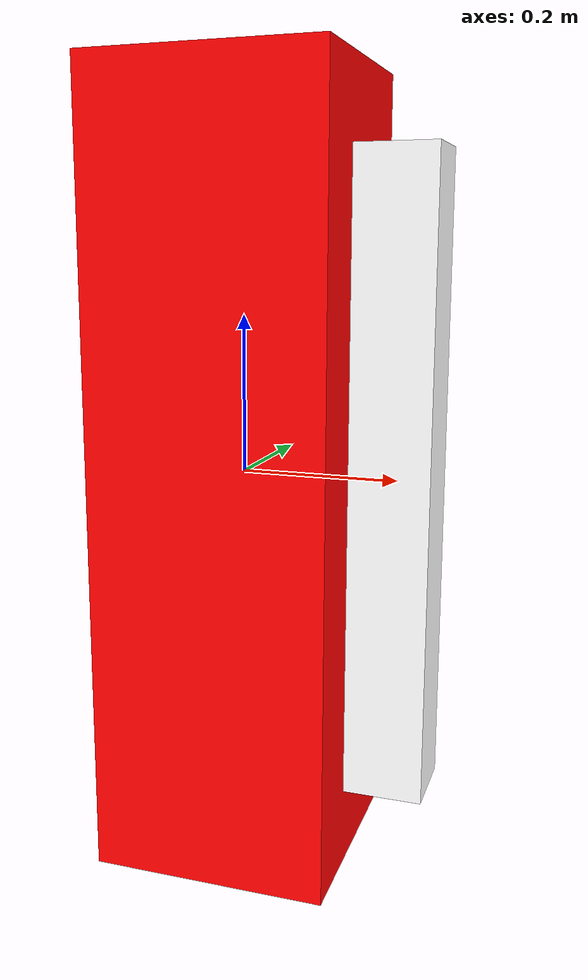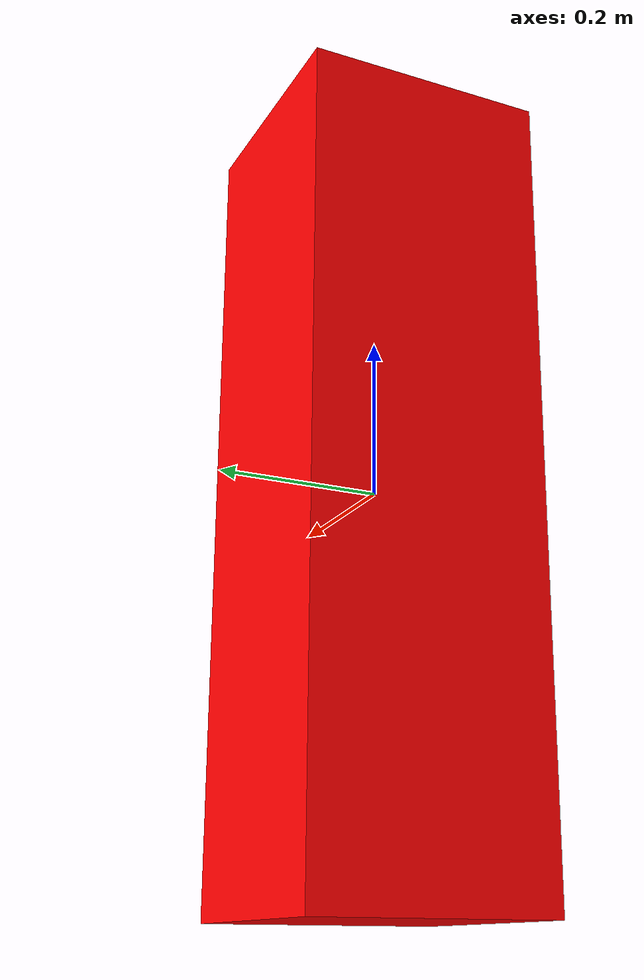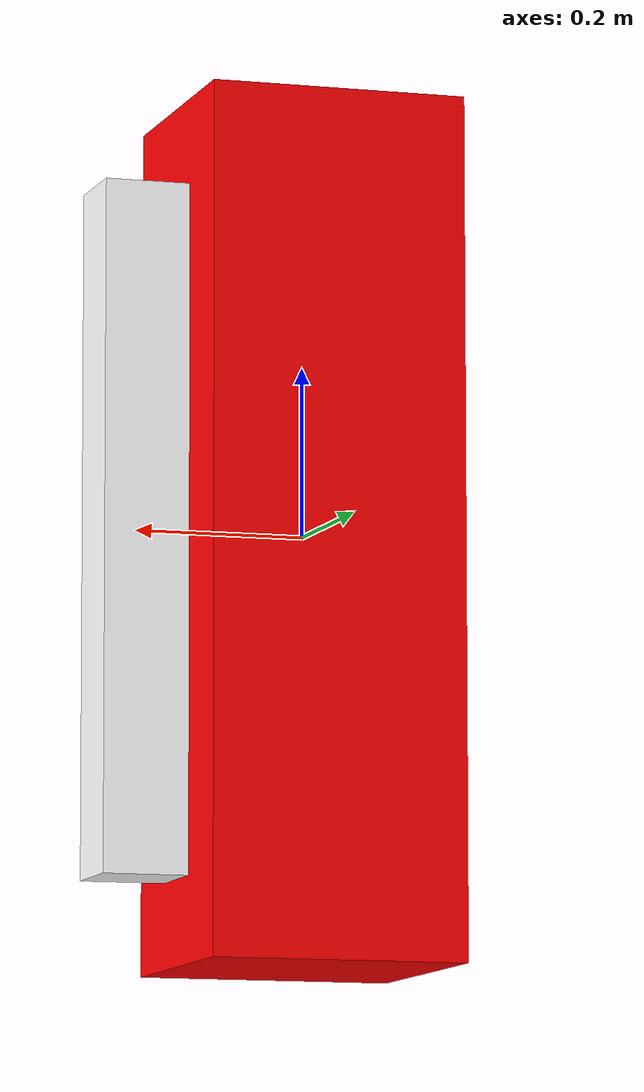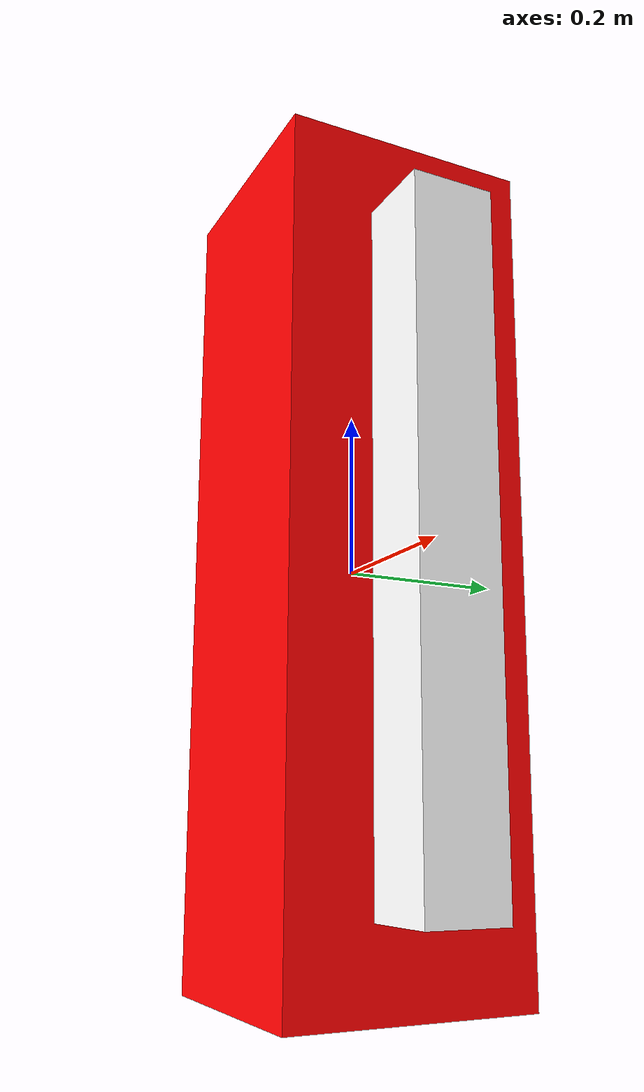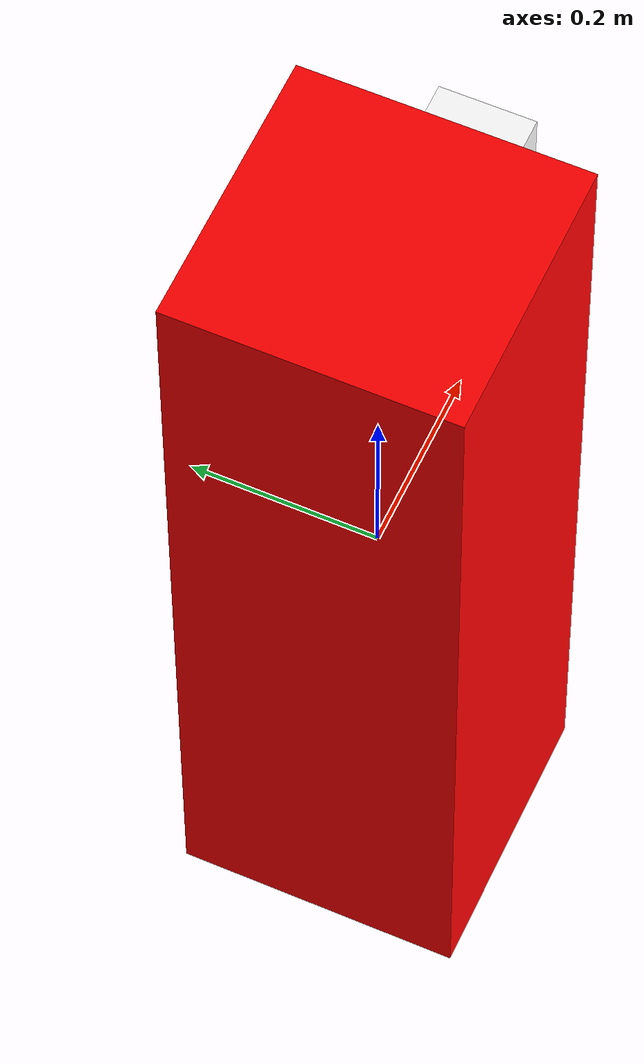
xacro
<?xml version="1.0" encoding="utf-8"?>
<robot xmlns:xacro="http://www.ros.org/wiki/xacro" name="pendulum_simple">

  <link name="base_link"></link>

  <joint name="base_joint" type="fixed">
    <origin xyz="0 0 0" rpy="0 0 0" />
    <parent link="base_link" />
    <child link="platform_link" />
  </joint>

  <link name="platform_link">
    <inertial>
      <origin xyz="0 0 0" rpy="0 0 0" />
      <mass value="100.0"/>
      <inertia
        ixx="10"
        ixy="0"
        ixz="0"
        iyy="10"
        iyz="0"
        izz="1" />
    </inertial>
    <visual>
      <origin xyz="0 0 0" rpy="0 0 0" />
      <geometry>
        <box size="0.3 0.3 1.0"/>
      </geometry>
      <material name="red">
        <color rgba="1 0 0 1" />
      </material>
    </visual>
    <collision>
      <origin xyz="0 0 0" rpy="0 0 0" />
      <geometry>
        <box size="0.3 0.3 1.0"/>
      </geometry>
    </collision>
  </link>

  <gazebo reference="platform_link">
    <material>Gazebo/Black</material>
  </gazebo>

  <link name="pendulum_link">
    <inertial>
      <origin xyz="0 0 -0.3" rpy="0 0 0" />
      <mass value="0.2"/>
      <inertia
        ixx="0.01"
        ixy="0"
        ixz="0"
        iyy="0.01"
        iyz="0"
        izz="0.000330" />
    </inertial>
    <visual>
      <origin xyz="0 0 -0.3" rpy="0 0 0" />
      <geometry>
        <box size="0.1 0.1 0.8"/>
      </geometry>
      <material name="white">
        <color rgba="1 1 1 1" />
      </material>
    </visual>
    <collision>
      <origin xyz="0 0 -0.3" rpy="0 0 0" />
      <geometry>
        <box size="0.1 0.1 0.8"/>
      </geometry>
    </collision>
  </link>

  <gazebo reference="pendulum_link">
    <material>Gazebo/Red</material>
  </gazebo>

  <joint name="pendulum_joint" type="continuous">
    <origin xyz="0.2 0 0.3" rpy="0 0 0" />
    <parent link="platform_link" />
    <child link="pendulum_link" />
    <axis xyz="1 0 0" />
    <dynamics damping="0.0" friction="0.0"/>
  </joint>

  <gazebo>
    <plugin name="pendulum_simple_plugin" filename="libpendulum_simple_plugin.so">
      <ros><namespace>/</namespace></ros>
    </plugin>
  </gazebo>

</robot>
